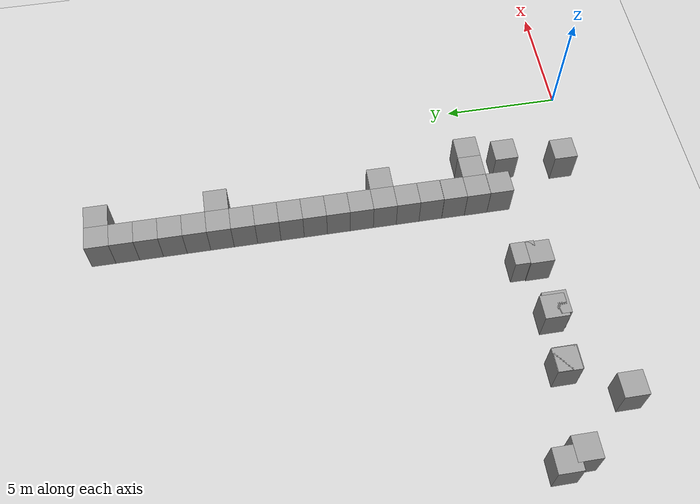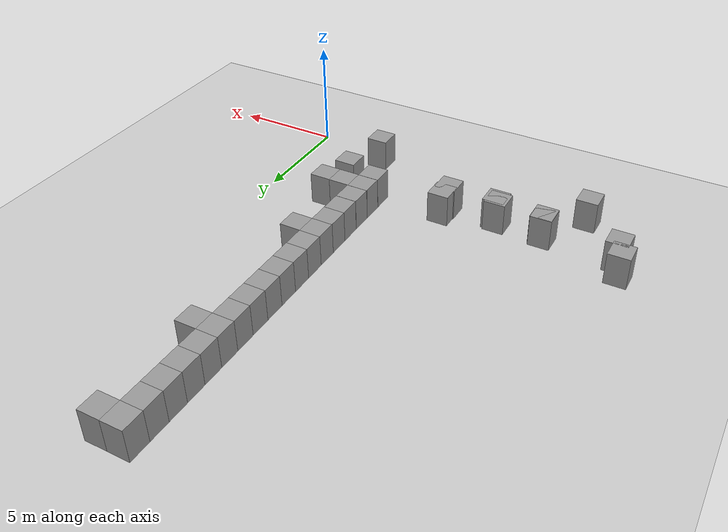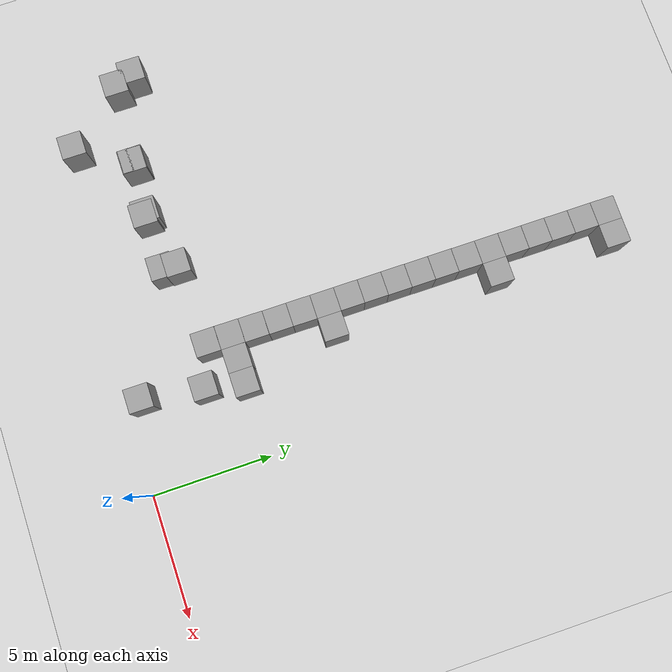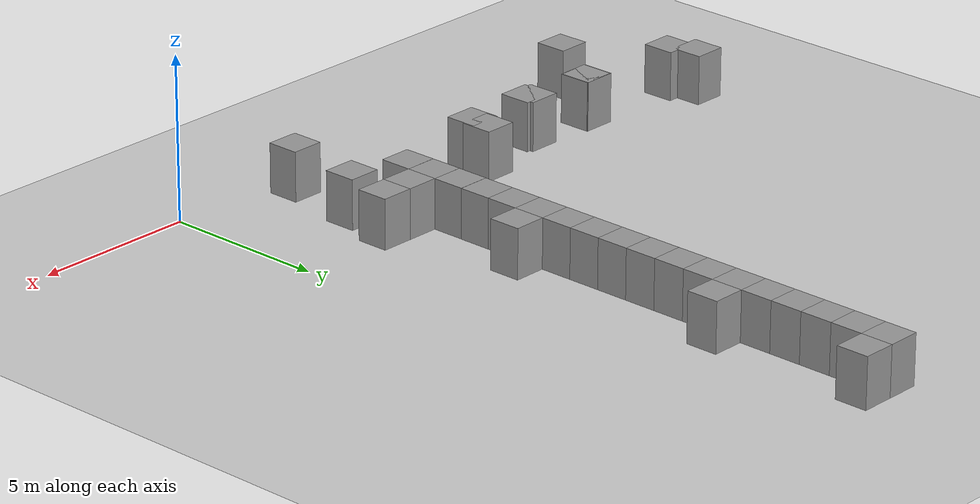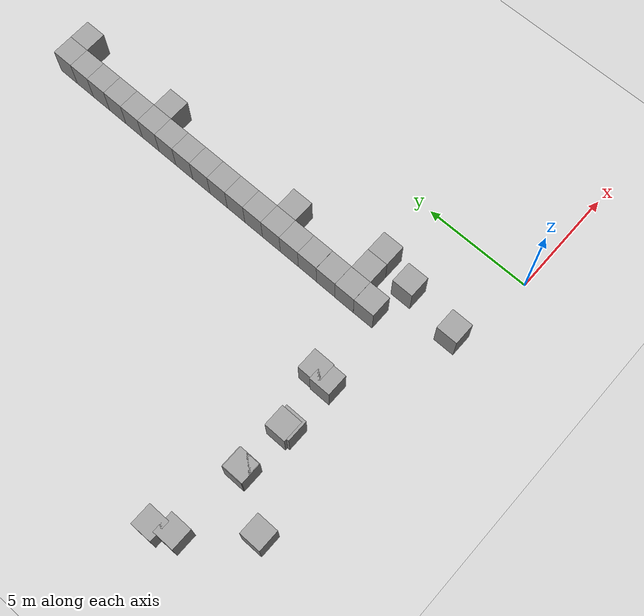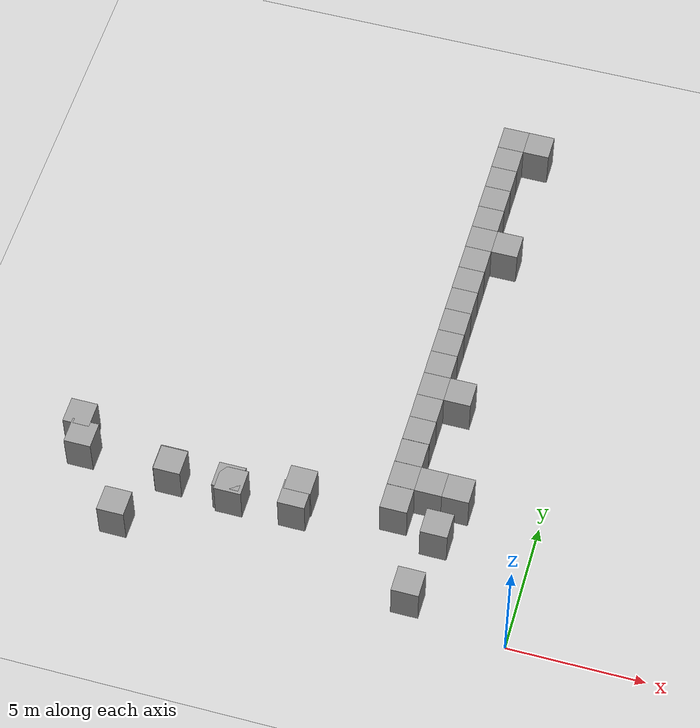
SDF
<sdf version="1.4">
 <world name="default">
  <model name="ground_plane">
   <static>1</static>
   <link name="link">
    <collision name="collision">
     <geometry><plane><normal>0 0 1</normal><size>100 100</size></plane></geometry>
     <surface><friction><ode><mu>100</mu><mu2>50</mu2></ode></friction></surface>
    </collision>
    <visual name="visual">
     <cast_shadows>0</cast_shadows>
     <geometry><plane><normal>0 0 1</normal><size>100 100</size></plane></geometry>
     <material>
      <script><uri>file://media/materials/scripts/gazebo.material</uri><name>Gazebo/Grey</name></script>
     </material>
    </visual>
    <velocity_decay><linear>0</linear><angular>0</angular></velocity_decay>
   </link>
  </model>
  <model name="unit_box_1">
   <pose>-5.01661 4.99523 0.5 0 -0 0.000223</pose>
   <static>1</static>
   <link name="link">
    <inertial>
     <mass>1</mass>
     <inertia><ixx>1</ixx><ixy>0</ixy><ixz>0</ixz><iyy>1</iyy><iyz>0</iyz><izz>1</izz></inertia>
    </inertial>
    <collision name="collision"><geometry><box><size>1 1 2</size></box></geometry></collision>
    <visual name="visual">
     <geometry><box><size>1 1 2</size></box></geometry>
     <material>
      <script><uri>file://media/materials/scripts/gazebo.material</uri><name>Gazebo/Grey</name></script>
     </material>
    </visual>
    <velocity_decay><linear>0</linear><angular>0</angular></velocity_decay>
   </link>
   <static>0</static>
  </model>
  <model name="unit_box_2">
   <pose>-4.01641 4.99001 0.5 0 -0 3e-05</pose>
   <static>1</static>
   <link name="link">
    <inertial>
     <mass>1</mass>
     <inertia><ixx>1</ixx><ixy>0</ixy><ixz>0</ixz><iyy>1</iyy><iyz>0</iyz><izz>1</izz></inertia>
    </inertial>
    <collision name="collision"><geometry><box><size>1 1 2</size></box></geometry></collision>
    <visual name="visual">
     <geometry><box><size>1 1 2</size></box></geometry>
     <material>
      <script><uri>file://media/materials/scripts/gazebo.material</uri><name>Gazebo/Grey</name></script>
     </material>
    </visual>
    <velocity_decay><linear>0</linear><angular>0</angular></velocity_decay>
   </link>
   <static>0</static>
  </model>
  <model name="unit_box_3">
   <pose>-3.0164 4.98791 0.5 0 -0 2.1e-05</pose>
   <static>1</static>
   <link name="link">
    <inertial>
     <mass>1</mass>
     <inertia><ixx>1</ixx><ixy>0</ixy><ixz>0</ixz><iyy>1</iyy><iyz>0</iyz><izz>1</izz></inertia>
    </inertial>
    <collision name="collision"><geometry><box><size>1 1 2</size></box></geometry></collision>
    <visual name="visual">
     <geometry><box><size>1 1 2</size></box></geometry>
     <material>
      <script><uri>file://media/materials/scripts/gazebo.material</uri><name>Gazebo/Grey</name></script>
     </material>
    </visual>
    <velocity_decay><linear>0</linear><angular>0</angular></velocity_decay>
   </link>
   <static>0</static>
  </model>
  <model name="unit_box_13">
   <pose>-14.6079 1.19812 0.5 0 0 -0.000581</pose>
   <static>1</static>
   <link name="link">
    <inertial>
     <mass>1</mass>
     <inertia><ixx>1</ixx><ixy>0</ixy><ixz>0</ixz><iyy>1</iyy><iyz>0</iyz><izz>1</izz></inertia>
    </inertial>
    <collision name="collision"><geometry><box><size>1 1 2</size></box></geometry></collision>
    <visual name="visual">
     <geometry><box><size>1 1 2</size></box></geometry>
     <material>
      <script><uri>file://media/materials/scripts/gazebo.material</uri><name>Gazebo/Grey</name></script>
     </material>
    </visual>
    <velocity_decay><linear>0</linear><angular>0</angular></velocity_decay>
   </link>
   <static>0</static>
  </model>
  <model name="unit_box_14">
   <pose>-3.73384 0.836895 0.5 0 0 -0.000611</pose>
   <static>1</static>
   <link name="link">
    <inertial>
     <mass>1</mass>
     <inertia><ixx>1</ixx><ixy>0</ixy><ixz>0</ixz><iyy>1</iyy><iyz>0</iyz><izz>1</izz></inertia>
    </inertial>
    <collision name="collision"><geometry><box><size>1 1 2</size></box></geometry></collision>
    <visual name="visual">
     <geometry><box><size>1 1 2</size></box></geometry>
     <material>
      <script><uri>file://media/materials/scripts/gazebo.material</uri><name>Gazebo/Grey</name></script>
     </material>
    </visual>
    <velocity_decay><linear>0</linear><angular>0</angular></velocity_decay>
   </link>
   <static>0</static>
  </model>
  <model name="unit_box_18">
   <pose>-10.8857 3.14072 0.5 0 0 -1.5e-05</pose>
   <static>1</static>
   <link name="link">
    <inertial>
     <mass>1</mass>
     <inertia><ixx>1</ixx><ixy>0</ixy><ixz>0</ixz><iyy>1</iyy><iyz>0</iyz><izz>1</izz></inertia>
    </inertial>
    <collision name="collision"><geometry><box><size>1 1 2</size></box></geometry></collision>
    <visual name="visual">
     <geometry><box><size>1 1 2</size></box></geometry>
     <material>
      <script><uri>file://media/materials/scripts/gazebo.material</uri><name>Gazebo/Grey</name></script>
     </material>
    </visual>
    <velocity_decay><linear>0</linear><angular>0</angular></velocity_decay>
   </link>
   <static>0</static>
  </model>
  <model name="unit_box_19">
   <pose>-13.2215 3.36273 0.5 0 0 -1e-05</pose>
   <static>1</static>
   <link name="link">
    <inertial>
     <mass>1</mass>
     <inertia><ixx>1</ixx><ixy>0</ixy><ixz>0</ixz><iyy>1</iyy><iyz>0</iyz><izz>1</izz></inertia>
    </inertial>
    <collision name="collision"><geometry><box><size>1 1 2</size></box></geometry></collision>
    <visual name="visual">
     <geometry><box><size>1 1 2</size></box></geometry>
     <material>
      <script><uri>file://media/materials/scripts/gazebo.material</uri><name>Gazebo/Grey</name></script>
     </material>
    </visual>
    <velocity_decay><linear>0</linear><angular>0</angular></velocity_decay>
   </link>
   <static>0</static>
  </model>
  <model name="unit_box_22">
   <pose>-3.38353 3.38811 0.5 0 0 -1.2e-05</pose>
   <static>1</static>
   <link name="link">
    <inertial>
     <mass>1</mass>
     <inertia><ixx>1</ixx><ixy>0</ixy><ixz>0</ixz><iyy>1</iyy><iyz>0</iyz><izz>1</izz></inertia>
    </inertial>
    <collision name="collision"><geometry><box><size>1 1 2</size></box></geometry></collision>
    <visual name="visual">
     <geometry><box><size>1 1 2</size></box></geometry>
     <material>
      <script><uri>file://media/materials/scripts/gazebo.material</uri><name>Gazebo/Grey</name></script>
     </material>
    </visual>
    <velocity_decay><linear>0</linear><angular>0</angular></velocity_decay>
   </link>
   <static>0</static>
  </model>
  <model name="unit_box_40">
   <pose>-5.01481 3.99235 0.5 0 -0 0.003225</pose>
   <static>1</static>
   <link name="link">
    <inertial>
     <mass>1</mass>
     <inertia><ixx>1</ixx><ixy>0</ixy><ixz>0</ixz><iyy>1</iyy><iyz>0</iyz><izz>1</izz></inertia>
    </inertial>
    <collision name="collision"><geometry><box><size>1 1 2</size></box></geometry></collision>
    <visual name="visual">
     <geometry><box><size>1 1 2</size></box></geometry>
     <material>
      <script><uri>file://media/materials/scripts/gazebo.material</uri><name>Gazebo/Grey</name></script>
     </material>
    </visual>
    <velocity_decay><linear>0</linear><angular>0</angular></velocity_decay>
   </link>
   <static>0</static>
  </model>
  <model name="unit_box_61">
   <pose>-5.0071 5.99581 0.5 0 0 -0.000452</pose>
   <static>1</static>
   <link name="link">
    <inertial>
     <mass>1</mass>
     <inertia><ixx>1</ixx><ixy>0</ixy><ixz>0</ixz><iyy>1</iyy><iyz>0</iyz><izz>1</izz></inertia>
    </inertial>
    <collision name="collision"><geometry><box><size>1 1 2</size></box></geometry></collision>
    <visual name="visual">
     <geometry><box><size>1 1 2</size></box></geometry>
     <material>
      <script><uri>file://media/materials/scripts/gazebo.material</uri><name>Gazebo/Grey</name></script>
     </material>
    </visual>
    <velocity_decay><linear>0</linear><angular>0</angular></velocity_decay>
   </link>
   <static>0</static>
  </model>
  <model name="unit_box_67">
   <pose>-5.00001 6.99999 0.5 0 -0 9e-06</pose>
   <static>1</static>
   <link name="link">
    <inertial>
     <mass>1</mass>
     <inertia><ixx>1</ixx><ixy>0</ixy><ixz>0</ixz><iyy>1</iyy><iyz>0</iyz><izz>1</izz></inertia>
    </inertial>
    <collision name="collision"><geometry><box><size>1 1 2</size></box></geometry></collision>
    <visual name="visual">
     <geometry><box><size>1 1 2</size></box></geometry>
     <material>
      <script><uri>file://media/materials/scripts/gazebo.material</uri><name>Gazebo/Grey</name></script>
     </material>
    </visual>
    <velocity_decay><linear>0</linear><angular>0</angular></velocity_decay>
   </link>
   <static>0</static>
  </model>
  <model name="unit_box_68">
   <pose>-5.00001 7.99999 0.5 0 -0 8e-06</pose>
   <static>1</static>
   <link name="link">
    <inertial>
     <mass>1</mass>
     <inertia><ixx>1</ixx><ixy>0</ixy><ixz>0</ixz><iyy>1</iyy><iyz>0</iyz><izz>1</izz></inertia>
    </inertial>
    <collision name="collision"><geometry><box><size>1 1 2</size></box></geometry></collision>
    <visual name="visual">
     <geometry><box><size>1 1 2</size></box></geometry>
     <material>
      <script><uri>file://media/materials/scripts/gazebo.material</uri><name>Gazebo/Grey</name></script>
     </material>
    </visual>
    <velocity_decay><linear>0</linear><angular>0</angular></velocity_decay>
   </link>
   <static>0</static>
  </model>
  <model name="unit_box_69">
   <pose>-5 8.99999 0.5 0 -0 7e-06</pose>
   <static>1</static>
   <link name="link">
    <inertial>
     <mass>1</mass>
     <inertia><ixx>1</ixx><ixy>0</ixy><ixz>0</ixz><iyy>1</iyy><iyz>0</iyz><izz>1</izz></inertia>
    </inertial>
    <collision name="collision"><geometry><box><size>1 1 2</size></box></geometry></collision>
    <visual name="visual">
     <geometry><box><size>1 1 2</size></box></geometry>
     <material>
      <script><uri>file://media/materials/scripts/gazebo.material</uri><name>Gazebo/Grey</name></script>
     </material>
    </visual>
    <velocity_decay><linear>0</linear><angular>0</angular></velocity_decay>
   </link>
   <static>0</static>
  </model>
  <model name="unit_box_70">
   <pose>-4 9 0.5 0 -0 7e-06</pose>
   <static>1</static>
   <link name="link">
    <inertial>
     <mass>1</mass>
     <inertia><ixx>1</ixx><ixy>0</ixy><ixz>0</ixz><iyy>1</iyy><iyz>0</iyz><izz>1</izz></inertia>
    </inertial>
    <collision name="collision"><geometry><box><size>1 1 2</size></box></geometry></collision>
    <visual name="visual">
     <geometry><box><size>1 1 2</size></box></geometry>
     <material>
      <script><uri>file://media/materials/scripts/gazebo.material</uri><name>Gazebo/Grey</name></script>
     </material>
    </visual>
    <velocity_decay><linear>0</linear><angular>0</angular></velocity_decay>
   </link>
   <static>0</static>
  </model>
  <model name="unit_box_72">
   <pose>-4.99999 9.99999 0.5 0 -0 7e-06</pose>
   <static>1</static>
   <link name="link">
    <inertial>
     <mass>1</mass>
     <inertia><ixx>1</ixx><ixy>0</ixy><ixz>0</ixz><iyy>1</iyy><iyz>0</iyz><izz>1</izz></inertia>
    </inertial>
    <collision name="collision"><geometry><box><size>1 1 2</size></box></geometry></collision>
    <visual name="visual">
     <geometry><box><size>1 1 2</size></box></geometry>
     <material>
      <script><uri>file://media/materials/scripts/gazebo.material</uri><name>Gazebo/Grey</name></script>
     </material>
    </visual>
    <velocity_decay><linear>0</linear><angular>0</angular></velocity_decay>
   </link>
   <static>0</static>
  </model>
  <model name="unit_box_73">
   <pose>-5.00001 11 0.5 0 -0 8e-06</pose>
   <static>1</static>
   <link name="link">
    <inertial>
     <mass>1</mass>
     <inertia><ixx>1</ixx><ixy>0</ixy><ixz>0</ixz><iyy>1</iyy><iyz>0</iyz><izz>1</izz></inertia>
    </inertial>
    <collision name="collision"><geometry><box><size>1 1 2</size></box></geometry></collision>
    <visual name="visual">
     <geometry><box><size>1 1 2</size></box></geometry>
     <material>
      <script><uri>file://media/materials/scripts/gazebo.material</uri><name>Gazebo/Grey</name></script>
     </material>
    </visual>
    <velocity_decay><linear>0</linear><angular>0</angular></velocity_decay>
   </link>
   <static>0</static>
  </model>
  <model name="unit_box_74">
   <pose>-5.00001 12 0.5 0 -0 8e-06</pose>
   <static>1</static>
   <link name="link">
    <inertial>
     <mass>1</mass>
     <inertia><ixx>1</ixx><ixy>0</ixy><ixz>0</ixz><iyy>1</iyy><iyz>0</iyz><izz>1</izz></inertia>
    </inertial>
    <collision name="collision"><geometry><box><size>1 1 2</size></box></geometry></collision>
    <visual name="visual">
     <geometry><box><size>1 1 2</size></box></geometry>
     <material>
      <script><uri>file://media/materials/scripts/gazebo.material</uri><name>Gazebo/Grey</name></script>
     </material>
    </visual>
    <velocity_decay><linear>0</linear><angular>0</angular></velocity_decay>
   </link>
   <static>0</static>
  </model>
  <model name="unit_box_75">
   <pose>-5 13 0.5 0 -0 5e-06</pose>
   <static>1</static>
   <link name="link">
    <inertial>
     <mass>1</mass>
     <inertia><ixx>1</ixx><ixy>0</ixy><ixz>0</ixz><iyy>1</iyy><iyz>0</iyz><izz>1</izz></inertia>
    </inertial>
    <collision name="collision"><geometry><box><size>1 1 2</size></box></geometry></collision>
    <visual name="visual">
     <geometry><box><size>1 1 2</size></box></geometry>
     <material>
      <script><uri>file://media/materials/scripts/gazebo.material</uri><name>Gazebo/Grey</name></script>
     </material>
    </visual>
    <velocity_decay><linear>0</linear><angular>0</angular></velocity_decay>
   </link>
   <static>0</static>
  </model>
  <model name="unit_box_76">
   <pose>-5 14 0.5 0 -0 6e-06</pose>
   <static>1</static>
   <link name="link">
    <inertial>
     <mass>1</mass>
     <inertia><ixx>1</ixx><ixy>0</ixy><ixz>0</ixz><iyy>1</iyy><iyz>0</iyz><izz>1</izz></inertia>
    </inertial>
    <collision name="collision"><geometry><box><size>1 1 2</size></box></geometry></collision>
    <visual name="visual">
     <geometry><box><size>1 1 2</size></box></geometry>
     <material>
      <script><uri>file://media/materials/scripts/gazebo.material</uri><name>Gazebo/Grey</name></script>
     </material>
    </visual>
    <velocity_decay><linear>0</linear><angular>0</angular></velocity_decay>
   </link>
   <static>0</static>
  </model>
  <model name="unit_box_77">
   <pose>-4.99999 15 0.5 0 -0 7e-06</pose>
   <static>1</static>
   <link name="link">
    <inertial>
     <mass>1</mass>
     <inertia><ixx>1</ixx><ixy>0</ixy><ixz>0</ixz><iyy>1</iyy><iyz>0</iyz><izz>1</izz></inertia>
    </inertial>
    <collision name="collision"><geometry><box><size>1 1 2</size></box></geometry></collision>
    <visual name="visual">
     <geometry><box><size>1 1 2</size></box></geometry>
     <material>
      <script><uri>file://media/materials/scripts/gazebo.material</uri><name>Gazebo/Grey</name></script>
     </material>
    </visual>
    <velocity_decay><linear>0</linear><angular>0</angular></velocity_decay>
   </link>
   <static>0</static>
  </model>
  <model name="unit_box_78">
   <pose>-5 16 0.5 0 -0 7e-06</pose>
   <static>1</static>
   <link name="link">
    <inertial>
     <mass>1</mass>
     <inertia><ixx>1</ixx><ixy>0</ixy><ixz>0</ixz><iyy>1</iyy><iyz>0</iyz><izz>1</izz></inertia>
    </inertial>
    <collision name="collision"><geometry><box><size>1 1 2</size></box></geometry></collision>
    <visual name="visual">
     <geometry><box><size>1 1 2</size></box></geometry>
     <material>
      <script><uri>file://media/materials/scripts/gazebo.material</uri><name>Gazebo/Grey</name></script>
     </material>
    </visual>
    <velocity_decay><linear>0</linear><angular>0</angular></velocity_decay>
   </link>
   <static>0</static>
  </model>
  <model name="unit_box_79">
   <pose>-4.99997 17 0.5 0 -0 6e-06</pose>
   <static>1</static>
   <link name="link">
    <inertial>
     <mass>1</mass>
     <inertia><ixx>1</ixx><ixy>0</ixy><ixz>0</ixz><iyy>1</iyy><iyz>0</iyz><izz>1</izz></inertia>
    </inertial>
    <collision name="collision"><geometry><box><size>1 1 2</size></box></geometry></collision>
    <visual name="visual">
     <geometry><box><size>1 1 2</size></box></geometry>
     <material>
      <script><uri>file://media/materials/scripts/gazebo.material</uri><name>Gazebo/Grey</name></script>
     </material>
    </visual>
    <velocity_decay><linear>0</linear><angular>0</angular></velocity_decay>
   </link>
   <static>0</static>
  </model>
  <model name="unit_box_80">
   <pose>-4.99997 18 0.5 0 -0 3e-06</pose>
   <static>1</static>
   <link name="link">
    <inertial>
     <mass>1</mass>
     <inertia><ixx>1</ixx><ixy>0</ixy><ixz>0</ixz><iyy>1</iyy><iyz>0</iyz><izz>1</izz></inertia>
    </inertial>
    <collision name="collision"><geometry><box><size>1 1 2</size></box></geometry></collision>
    <visual name="visual">
     <geometry><box><size>1 1 2</size></box></geometry>
     <material>
      <script><uri>file://media/materials/scripts/gazebo.material</uri><name>Gazebo/Grey</name></script>
     </material>
    </visual>
    <velocity_decay><linear>0</linear><angular>0</angular></velocity_decay>
   </link>
   <static>0</static>
  </model>
  <model name="unit_box_81">
   <pose>-4 16 0.5 0 -0 7e-06</pose>
   <static>1</static>
   <link name="link">
    <inertial>
     <mass>1</mass>
     <inertia><ixx>1</ixx><ixy>0</ixy><ixz>0</ixz><iyy>1</iyy><iyz>0</iyz><izz>1</izz></inertia>
    </inertial>
    <collision name="collision"><geometry><box><size>1 1 2</size></box></geometry></collision>
    <visual name="visual">
     <geometry><box><size>1 1 2</size></box></geometry>
     <material>
      <script><uri>file://media/materials/scripts/gazebo.material</uri><name>Gazebo/Grey</name></script>
     </material>
    </visual>
    <velocity_decay><linear>0</linear><angular>0</angular></velocity_decay>
   </link>
   <static>0</static>
  </model>
  <model name="unit_box_96">
   <pose>-4.99997 19 0.5 0 -0 1e-06</pose>
   <static>1</static>
   <link name="link">
    <inertial>
     <mass>1</mass>
     <inertia><ixx>1</ixx><ixy>0</ixy><ixz>0</ixz><iyy>1</iyy><iyz>0</iyz><izz>1</izz></inertia>
    </inertial>
    <collision name="collision"><geometry><box><size>1 1 2</size></box></geometry></collision>
    <visual name="visual">
     <geometry><box><size>1 1 2</size></box></geometry>
     <material>
      <script><uri>file://media/materials/scripts/gazebo.material</uri><name>Gazebo/Grey</name></script>
     </material>
    </visual>
    <velocity_decay><linear>0</linear><angular>0</angular></velocity_decay>
   </link>
   <static>0</static>
  </model>
  <model name="unit_box_97">
   <pose>-4.99997 20 0.5 0 -0 1e-06</pose>
   <static>1</static>
   <link name="link">
    <inertial>
     <mass>1</mass>
     <inertia><ixx>1</ixx><ixy>0</ixy><ixz>0</ixz><iyy>1</iyy><iyz>0</iyz><izz>1</izz></inertia>
    </inertial>
    <collision name="collision"><geometry><box><size>1 1 2</size></box></geometry></collision>
    <visual name="visual">
     <geometry><box><size>1 1 2</size></box></geometry>
     <material>
      <script><uri>file://media/materials/scripts/gazebo.material</uri><name>Gazebo/Grey</name></script>
     </material>
    </visual>
    <velocity_decay><linear>0</linear><angular>0</angular></velocity_decay>
   </link>
   <static>0</static>
  </model>
  <model name="unit_box_98">
   <pose>-5.00001 21 0.5 0 -0 0</pose>
   <static>1</static>
   <link name="link">
    <inertial>
     <mass>1</mass>
     <inertia><ixx>1</ixx><ixy>0</ixy><ixz>0</ixz><iyy>1</iyy><iyz>0</iyz><izz>1</izz></inertia>
    </inertial>
    <collision name="collision"><geometry><box><size>1 1 2</size></box></geometry></collision>
    <visual name="visual">
     <geometry><box><size>1 1 2</size></box></geometry>
     <material>
      <script><uri>file://media/materials/scripts/gazebo.material</uri><name>Gazebo/Grey</name></script>
     </material>
    </visual>
    <velocity_decay><linear>0</linear><angular>0</angular></velocity_decay>
   </link>
   <static>0</static>
  </model>
  <model name="unit_box_99">
   <pose>-4.00001 21 0.5 0 0 -1e-06</pose>
   <static>1</static>
   <link name="link">
    <inertial>
     <mass>1</mass>
     <inertia><ixx>1</ixx><ixy>0</ixy><ixz>0</ixz><iyy>1</iyy><iyz>0</iyz><izz>1</izz></inertia>
    </inertial>
    <collision name="collision"><geometry><box><size>1 1 2</size></box></geometry></collision>
    <visual name="visual">
     <geometry><box><size>1 1 2</size></box></geometry>
     <material>
      <script><uri>file://media/materials/scripts/gazebo.material</uri><name>Gazebo/Grey</name></script>
     </material>
    </visual>
    <velocity_decay><linear>0</linear><angular>0</angular></velocity_decay>
   </link>
   <static>0</static>
  </model>
  <model name="unit_box_224">
   <pose>-13.2408 3.38957 0.5 0 0 -4e-06</pose>
   <static>1</static>
   <link name="link">
    <inertial>
     <mass>1</mass>
     <inertia><ixx>1</ixx><ixy>0</ixy><ixz>0</ixz><iyy>1</iyy><iyz>0</iyz><izz>1</izz></inertia>
    </inertial>
    <collision name="collision"><geometry><box><size>1 1 2</size></box></geometry></collision>
    <visual name="visual">
     <geometry><box><size>1 1 2</size></box></geometry>
     <material>
      <script><uri>file://media/materials/scripts/gazebo.material</uri><name>Gazebo/Grey</name></script>
     </material>
    </visual>
    <velocity_decay><linear>0</linear><angular>0</angular></velocity_decay>
   </link>
   <static>0</static>
  </model>
  <model name="unit_box_225">
   <pose>-16.9893 4.4251 0.5 0 0 -4e-06</pose>
   <static>1</static>
   <link name="link">
    <inertial>
     <mass>1</mass>
     <inertia><ixx>1</ixx><ixy>0</ixy><ixz>0</ixz><iyy>1</iyy><iyz>0</iyz><izz>1</izz></inertia>
    </inertial>
    <collision name="collision"><geometry><box><size>1 1 2</size></box></geometry></collision>
    <visual name="visual">
     <geometry><box><size>1 1 2</size></box></geometry>
     <material>
      <script><uri>file://media/materials/scripts/gazebo.material</uri><name>Gazebo/Grey</name></script>
     </material>
    </visual>
    <velocity_decay><linear>0</linear><angular>0</angular></velocity_decay>
   </link>
   <static>0</static>
  </model>
  <model name="unit_box_241">
   <pose>-8.50772 3.82065 0.5 0 -0 0</pose>
   <static>1</static>
   <link name="link">
    <inertial>
     <mass>1</mass>
     <inertia><ixx>1</ixx><ixy>0</ixy><ixz>0</ixz><iyy>1</iyy><iyz>0</iyz><izz>1</izz></inertia>
    </inertial>
    <collision name="collision"><geometry><box><size>1 1 2</size></box></geometry></collision>
    <visual name="visual">
     <geometry><box><size>1 1 2</size></box></geometry>
     <material>
      <script><uri>file://media/materials/scripts/gazebo.material</uri><name>Gazebo/Grey</name></script>
     </material>
    </visual>
    <velocity_decay><linear>0</linear><angular>0</angular></velocity_decay>
   </link>
   <static>0</static>
  </model>
  <model name="unit_box_242">
   <pose>-8.54654 3.18906 0.5 0 -0 0</pose>
   <static>1</static>
   <link name="link">
    <inertial>
     <mass>1</mass>
     <inertia><ixx>1</ixx><ixy>0</ixy><ixz>0</ixz><iyy>1</iyy><iyz>0</iyz><izz>1</izz></inertia>
    </inertial>
    <collision name="collision"><geometry><box><size>1 1 2</size></box></geometry></collision>
    <visual name="visual">
     <geometry><box><size>1 1 2</size></box></geometry>
     <material>
      <script><uri>file://media/materials/scripts/gazebo.material</uri><name>Gazebo/Grey</name></script>
     </material>
    </visual>
    <velocity_decay><linear>0</linear><angular>0</angular></velocity_decay>
   </link>
   <static>0</static>
  </model>
  <model name="unit_box_243">
   <pose>-16.6642 3.60969 0.5 0 -0 0</pose>
   <static>1</static>
   <link name="link">
    <inertial>
     <mass>1</mass>
     <inertia><ixx>1</ixx><ixy>0</ixy><ixz>0</ixz><iyy>1</iyy><iyz>0</iyz><izz>1</izz></inertia>
    </inertial>
    <collision name="collision"><geometry><box><size>1 1 2</size></box></geometry></collision>
    <visual name="visual">
     <geometry><box><size>1 1 2</size></box></geometry>
     <material>
      <script><uri>file://media/materials/scripts/gazebo.material</uri><name>Gazebo/Grey</name></script>
     </material>
    </visual>
    <velocity_decay><linear>0</linear><angular>0</angular></velocity_decay>
   </link>
   <static>0</static>
  </model>
  <model name="unit_box_244">
   <pose>-11.0071 3.25201 0.5 0 -0 0</pose>
   <static>1</static>
   <link name="link">
    <inertial>
     <mass>1</mass>
     <inertia><ixx>1</ixx><ixy>0</ixy><ixz>0</ixz><iyy>1</iyy><iyz>0</iyz><izz>1</izz></inertia>
    </inertial>
    <collision name="collision"><geometry><box><size>1 1 2</size></box></geometry></collision>
    <visual name="visual">
     <geometry><box><size>1 1 2</size></box></geometry>
     <material>
      <script><uri>file://media/materials/scripts/gazebo.material</uri><name>Gazebo/Grey</name></script>
     </material>
    </visual>
    <velocity_decay><linear>0</linear><angular>0</angular></velocity_decay>
   </link>
   <static>0</static>
  </model>
 </world>
</sdf>
